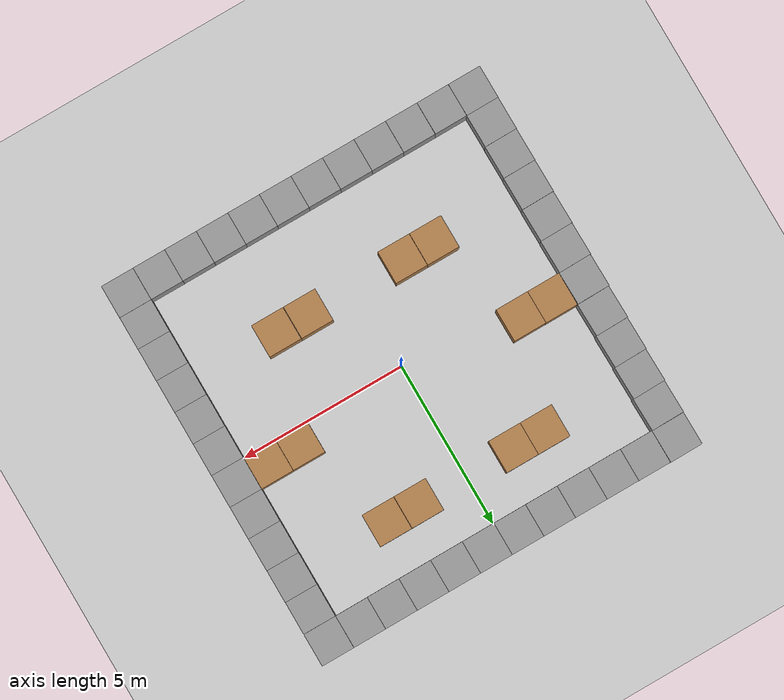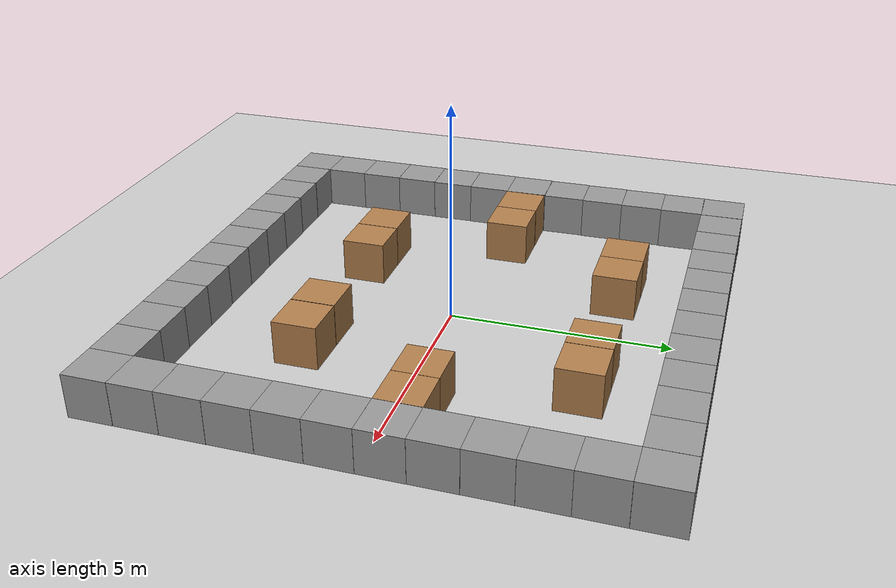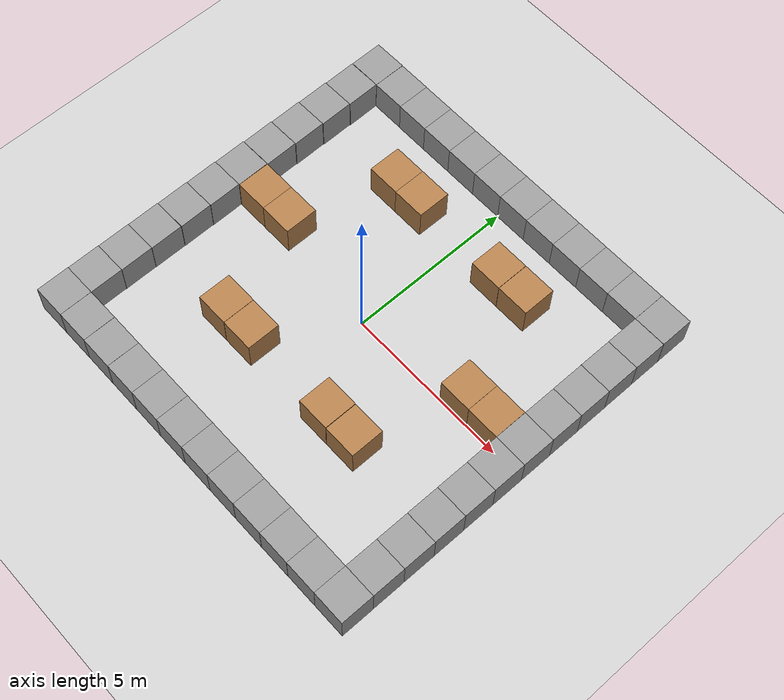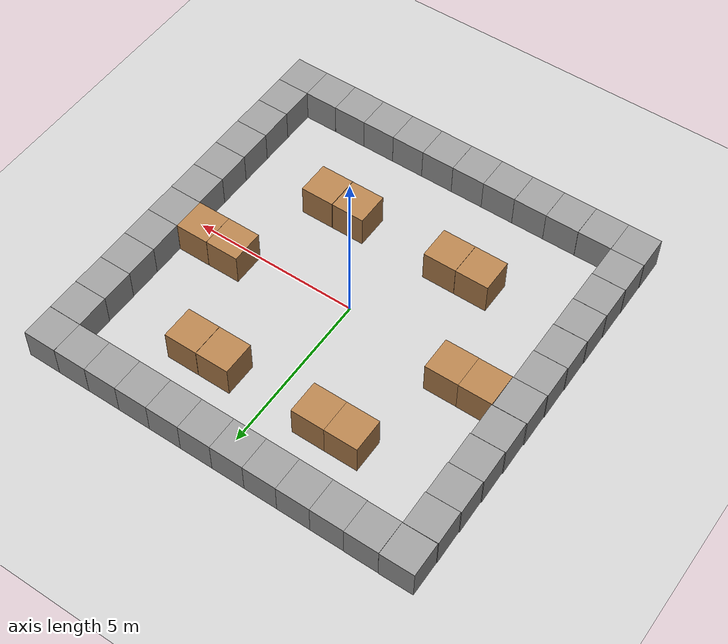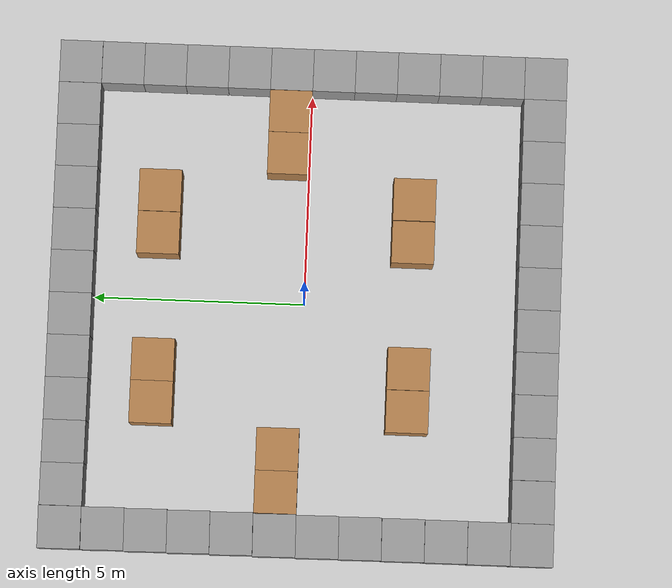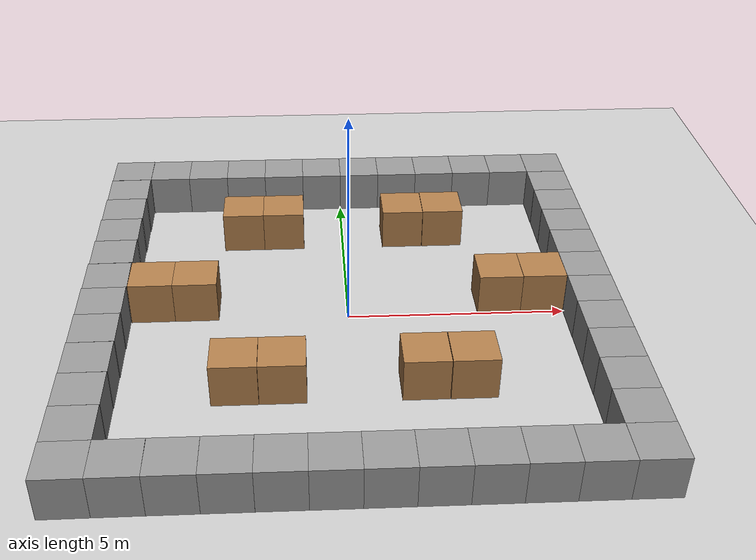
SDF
<sdf version="1.6">
 <world name="default">
  <light name="sun" type="directional">
   <pose>0 0 10 0 -0 0</pose>
   <diffuse>0.8 0.8 0.8 1</diffuse>
   <specular>0.1 0.1 0.1 1</specular>
   <attenuation>
    <range>1000</range>
    <constant>0.9</constant>
    <linear>0.01</linear>
    <quadratic>0.001</quadratic>
   </attenuation>
   <direction>-0.5 0.5 -1</direction>
  </light>
  <model name="ground_plane">
   <static>1</static>
   <link name="link">
    <collision name="collision">
     <geometry><plane><normal>0 0 1</normal><size>100 100</size></plane></geometry>
     <surface><friction><ode><mu>100</mu><mu2>50</mu2></ode></friction></surface>
    </collision>
    <visual name="visual">
     <cast_shadows>0</cast_shadows>
     <geometry><plane><normal>0 0 1</normal><size>100 100</size></plane></geometry>
     <material>
      <script><uri>file://media/materials/scripts/gazebo.material</uri><name>Gazebo/Grey</name></script>
     </material>
    </visual>
   </link>
  </model>
  <gravity>0 0 -9.8</gravity>
  <magnetic_field>6e-06 2.3e-05 -4.2e-05</magnetic_field>
  <atmosphere type="adiabatic"/>
  <physics name="default_physics" default="0" type="ode">
   <max_step_size>0.001</max_step_size>
   <real_time_factor>1</real_time_factor>
   <real_time_update_rate>1000</real_time_update_rate>
  </physics>
  <scene><ambient>0.4 0.4 0.4 1</ambient><background>0.7 0.7 0.7 1</background><shadows>1</shadows></scene>
  <spherical_coordinates>
   <surface_model>EARTH_WGS84</surface_model>
   <latitude_deg>0</latitude_deg>
   <longitude_deg>0</longitude_deg>
   <elevation>0</elevation>
   <heading_deg>0</heading_deg>
  </spherical_coordinates>
  <model name="unit_box_0">
   <pose>-4.49669 0.500481 0.499995 -1e-05 0 0.004034</pose>
   <link name="link">
    <inertial>
     <mass>1</mass>
     <inertia>
      <ixx>0.166667</ixx>
      <ixy>0</ixy>
      <ixz>0</ixz>
      <iyy>0.166667</iyy>
      <iyz>0</iyz>
      <izz>0.166667</izz>
     </inertia>
    </inertial>
    <collision name="collision"><geometry><box><size>1 1 1</size></box></geometry></collision>
    <visual name="visual">
     <geometry><box><size>1 1 1</size></box></geometry>
     <material>
      <script><name>Gazebo/Wood</name><uri>file://media/materials/scripts/gazebo.material</uri></script>
     </material>
    </visual>
   </link>
  </model>
  <model name="unit_box_1">
   <pose>-3.49667 0.500607 0.499995 -1e-05 -0 0.004049</pose>
   <link name="link">
    <inertial>
     <mass>1</mass>
     <inertia>
      <ixx>0.166667</ixx>
      <ixy>0</ixy>
      <ixz>0</ixz>
      <iyy>0.166667</iyy>
      <iyz>0</iyz>
      <izz>0.166667</izz>
     </inertia>
    </inertial>
    <collision name="collision"><geometry><box><size>1 1 1</size></box></geometry></collision>
    <visual name="visual">
     <geometry><box><size>1 1 1</size></box></geometry>
     <material>
      <script><name>Gazebo/Wood</name><uri>file://media/materials/scripts/gazebo.material</uri></script>
     </material>
    </visual>
   </link>
  </model>
  <model name="unit_box_6">
   <pose>3.49689 0.499894 0.499995 0 1e-05 0.000361</pose>
   <link name="link">
    <inertial>
     <mass>1</mass>
     <inertia>
      <ixx>0.166667</ixx>
      <ixy>0</ixy>
      <ixz>0</ixz>
      <iyy>0.166667</iyy>
      <iyz>0</iyz>
      <izz>0.166667</izz>
     </inertia>
    </inertial>
    <collision name="collision"><geometry><box><size>1 1 1</size></box></geometry></collision>
    <visual name="visual">
     <geometry><box><size>1 1 1</size></box></geometry>
     <material>
      <script><name>Gazebo/Wood</name><uri>file://media/materials/scripts/gazebo.material</uri></script>
     </material>
    </visual>
   </link>
  </model>
  <model name="unit_box_7">
   <pose>4.49805 0.501945 0.499995 0 1e-05 0.000101</pose>
   <link name="link">
    <inertial>
     <mass>1</mass>
     <inertia>
      <ixx>0.166667</ixx>
      <ixy>0</ixy>
      <ixz>0</ixz>
      <iyy>0.166667</iyy>
      <iyz>0</iyz>
      <izz>0.166667</izz>
     </inertia>
    </inertial>
    <collision name="collision"><geometry><box><size>1 1 1</size></box></geometry></collision>
    <visual name="visual">
     <geometry><box><size>1 1 1</size></box></geometry>
     <material>
      <script><name>Gazebo/Wood</name><uri>file://media/materials/scripts/gazebo.material</uri></script>
     </material>
    </visual>
   </link>
  </model>
  <model name="unit_box_8">
   <pose>-2.50433 -2.50006 0.499995 1e-05 -0 0.000101</pose>
   <link name="link">
    <inertial>
     <mass>1</mass>
     <inertia>
      <ixx>0.166667</ixx>
      <ixy>0</ixy>
      <ixz>0</ixz>
      <iyy>0.166667</iyy>
      <iyz>0</iyz>
      <izz>0.166667</izz>
     </inertia>
    </inertial>
    <collision name="collision"><geometry><box><size>1 1 1</size></box></geometry></collision>
    <visual name="visual">
     <geometry><box><size>1 1 1</size></box></geometry>
     <material>
      <script><name>Gazebo/Wood</name><uri>file://media/materials/scripts/gazebo.material</uri></script>
     </material>
    </visual>
   </link>
  </model>
  <model name="unit_box_9">
   <pose>-1.49998 -2.5 0.499995 1e-05 -0 0.000107</pose>
   <link name="link">
    <inertial>
     <mass>1</mass>
     <inertia>
      <ixx>0.166667</ixx>
      <ixy>0</ixy>
      <ixz>0</ixz>
      <iyy>0.166667</iyy>
      <iyz>0</iyz>
      <izz>0.166667</izz>
     </inertia>
    </inertial>
    <collision name="collision"><geometry><box><size>1 1 1</size></box></geometry></collision>
    <visual name="visual">
     <geometry><box><size>1 1 1</size></box></geometry>
     <material>
      <script><name>Gazebo/Wood</name><uri>file://media/materials/scripts/gazebo.material</uri></script>
     </material>
    </visual>
   </link>
  </model>
  <model name="unit_box_10">
   <pose>1.48697 -2.5003 0.499995 0 1e-05 0.000579</pose>
   <link name="link">
    <inertial>
     <mass>1</mass>
     <inertia>
      <ixx>0.166667</ixx>
      <ixy>0</ixy>
      <ixz>0</ixz>
      <iyy>0.166667</iyy>
      <iyz>0</iyz>
      <izz>0.166667</izz>
     </inertia>
    </inertial>
    <collision name="collision"><geometry><box><size>1 1 1</size></box></geometry></collision>
    <visual name="visual">
     <geometry><box><size>1 1 1</size></box></geometry>
     <material>
      <script><name>Gazebo/Wood</name><uri>file://media/materials/scripts/gazebo.material</uri></script>
     </material>
    </visual>
   </link>
  </model>
  <model name="unit_box_11">
   <pose>2.5 -2.5 0.499995 1e-05 -0 0.000577</pose>
   <link name="link">
    <inertial>
     <mass>1</mass>
     <inertia>
      <ixx>0.166667</ixx>
      <ixy>0</ixy>
      <ixz>0</ixz>
      <iyy>0.166667</iyy>
      <iyz>0</iyz>
      <izz>0.166667</izz>
     </inertia>
    </inertial>
    <collision name="collision"><geometry><box><size>1 1 1</size></box></geometry></collision>
    <visual name="visual">
     <geometry><box><size>1 1 1</size></box></geometry>
     <material>
      <script><name>Gazebo/Wood</name><uri>file://media/materials/scripts/gazebo.material</uri></script>
     </material>
    </visual>
   </link>
  </model>
  <model name="unit_box_12">
   <pose>-2.5 3.5 0.499995 1e-05 0 1e-06</pose>
   <link name="link">
    <inertial>
     <mass>1</mass>
     <inertia>
      <ixx>0.166667</ixx>
      <ixy>0</ixy>
      <ixz>0</ixz>
      <iyy>0.166667</iyy>
      <iyz>0</iyz>
      <izz>0.166667</izz>
     </inertia>
    </inertial>
    <collision name="collision"><geometry><box><size>1 1 1</size></box></geometry></collision>
    <visual name="visual">
     <geometry><box><size>1 1 1</size></box></geometry>
     <material>
      <script><name>Gazebo/Wood</name><uri>file://media/materials/scripts/gazebo.material</uri></script>
     </material>
    </visual>
   </link>
  </model>
  <model name="unit_box_13">
   <pose>-1.49999 3.5 0.499995 1e-05 -0 1.1e-05</pose>
   <link name="link">
    <inertial>
     <mass>1</mass>
     <inertia>
      <ixx>0.166667</ixx>
      <ixy>0</ixy>
      <ixz>0</ixz>
      <iyy>0.166667</iyy>
      <iyz>0</iyz>
      <izz>0.166667</izz>
     </inertia>
    </inertial>
    <collision name="collision"><geometry><box><size>1 1 1</size></box></geometry></collision>
    <visual name="visual">
     <geometry><box><size>1 1 1</size></box></geometry>
     <material>
      <script><name>Gazebo/Wood</name><uri>file://media/materials/scripts/gazebo.material</uri></script>
     </material>
    </visual>
   </link>
  </model>
  <model name="unit_box_14">
   <pose>1.49419 3.5002 0.499995 1e-05 -0 -0.000432</pose>
   <link name="link">
    <inertial>
     <mass>1</mass>
     <inertia>
      <ixx>0.166667</ixx>
      <ixy>0</ixy>
      <ixz>0</ixz>
      <iyy>0.166667</iyy>
      <iyz>0</iyz>
      <izz>0.166667</izz>
     </inertia>
    </inertial>
    <collision name="collision"><geometry><box><size>1 1 1</size></box></geometry></collision>
    <visual name="visual">
     <geometry><box><size>1 1 1</size></box></geometry>
     <material>
      <script><name>Gazebo/Wood</name><uri>file://media/materials/scripts/gazebo.material</uri></script>
     </material>
    </visual>
   </link>
  </model>
  <model name="unit_box_15">
   <pose>2.5 3.5 0.499995 0 1e-05 -0.000436</pose>
   <link name="link">
    <inertial>
     <mass>1</mass>
     <inertia>
      <ixx>0.166667</ixx>
      <ixy>0</ixy>
      <ixz>0</ixz>
      <iyy>0.166667</iyy>
      <iyz>0</iyz>
      <izz>0.166667</izz>
     </inertia>
    </inertial>
    <collision name="collision"><geometry><box><size>1 1 1</size></box></geometry></collision>
    <visual name="visual">
     <geometry><box><size>1 1 1</size></box></geometry>
     <material>
      <script><name>Gazebo/Wood</name><uri>file://media/materials/scripts/gazebo.material</uri></script>
     </material>
    </visual>
   </link>
  </model>
  <model name="unit_box_2">
   <pose>-5.50286 -5.50983 0.5 0 -0 0.006134</pose>
   <link name="link">
    <inertial>
     <mass>1</mass>
     <inertia>
      <ixx>0.166667</ixx>
      <ixy>0</ixy>
      <ixz>0</ixz>
      <iyy>0.166667</iyy>
      <iyz>0</iyz>
      <izz>0.166667</izz>
     </inertia>
    </inertial>
    <collision name="collision"><geometry><box><size>1 1 1</size></box></geometry></collision>
    <visual name="visual">
     <geometry><box><size>1 1 1</size></box></geometry>
     <material>
      <script><name>Gazebo/Grey</name><uri>file://media/materials/scripts/gazebo.material</uri></script>
     </material>
    </visual>
   </link>
  </model>
  <model name="unit_box_3">
   <pose>-5.50187 -4.50969 0.5 0 -0 0.006357</pose>
   <link name="link">
    <inertial>
     <mass>1</mass>
     <inertia>
      <ixx>0.166667</ixx>
      <ixy>0</ixy>
      <ixz>0</ixz>
      <iyy>0.166667</iyy>
      <iyz>0</iyz>
      <izz>0.166667</izz>
     </inertia>
    </inertial>
    <collision name="collision"><geometry><box><size>1 1 1</size></box></geometry></collision>
    <visual name="visual">
     <geometry><box><size>1 1 1</size></box></geometry>
     <material>
      <script><name>Gazebo/Grey</name><uri>file://media/materials/scripts/gazebo.material</uri></script>
     </material>
    </visual>
   </link>
  </model>
  <model name="unit_box_4">
   <pose>-5.50141 -3.50902 0.499995 0 1e-05 0.007636</pose>
   <link name="link">
    <inertial>
     <mass>1</mass>
     <inertia>
      <ixx>0.166667</ixx>
      <ixy>0</ixy>
      <ixz>0</ixz>
      <iyy>0.166667</iyy>
      <iyz>0</iyz>
      <izz>0.166667</izz>
     </inertia>
    </inertial>
    <collision name="collision"><geometry><box><size>1 1 1</size></box></geometry></collision>
    <visual name="visual">
     <geometry><box><size>1 1 1</size></box></geometry>
     <material>
      <script><name>Gazebo/Grey</name><uri>file://media/materials/scripts/gazebo.material</uri></script>
     </material>
    </visual>
   </link>
  </model>
  <model name="unit_box_5">
   <pose>-5.50197 -2.50779 0.5 0 -0 0.010032</pose>
   <link name="link">
    <inertial>
     <mass>1</mass>
     <inertia>
      <ixx>0.166667</ixx>
      <ixy>0</ixy>
      <ixz>0</ixz>
      <iyy>0.166667</iyy>
      <iyz>0</iyz>
      <izz>0.166667</izz>
     </inertia>
    </inertial>
    <collision name="collision"><geometry><box><size>1 1 1</size></box></geometry></collision>
    <visual name="visual">
     <geometry><box><size>1 1 1</size></box></geometry>
     <material>
      <script><name>Gazebo/Grey</name><uri>file://media/materials/scripts/gazebo.material</uri></script>
     </material>
    </visual>
   </link>
  </model>
  <model name="unit_box_16">
   <pose>-5.50312 -1.50591 0.5 0 -0 0.013697</pose>
   <link name="link">
    <inertial>
     <mass>1</mass>
     <inertia>
      <ixx>0.166667</ixx>
      <ixy>0</ixy>
      <ixz>0</ixz>
      <iyy>0.166667</iyy>
      <iyz>0</iyz>
      <izz>0.166667</izz>
     </inertia>
    </inertial>
    <collision name="collision"><geometry><box><size>1 1 1</size></box></geometry></collision>
    <visual name="visual">
     <geometry><box><size>1 1 1</size></box></geometry>
     <material>
      <script><name>Gazebo/Grey</name><uri>file://media/materials/scripts/gazebo.material</uri></script>
     </material>
    </visual>
   </link>
  </model>
  <model name="unit_box_17">
   <pose>-5.50624 -0.505473 0.499995 1e-05 -0 0.014479</pose>
   <link name="link">
    <inertial>
     <mass>1</mass>
     <inertia>
      <ixx>0.166667</ixx>
      <ixy>0</ixy>
      <ixz>0</ixz>
      <iyy>0.166667</iyy>
      <iyz>0</iyz>
      <izz>0.166667</izz>
     </inertia>
    </inertial>
    <collision name="collision"><geometry><box><size>1 1 1</size></box></geometry></collision>
    <visual name="visual">
     <geometry><box><size>1 1 1</size></box></geometry>
     <material>
      <script><name>Gazebo/Grey</name><uri>file://media/materials/scripts/gazebo.material</uri></script>
     </material>
    </visual>
   </link>
  </model>
  <model name="unit_box_18">
   <pose>-5.50598 0.494806 0.5 0 -0 0.014771</pose>
   <link name="link">
    <inertial>
     <mass>1</mass>
     <inertia>
      <ixx>0.166667</ixx>
      <ixy>0</ixy>
      <ixz>0</ixz>
      <iyy>0.166667</iyy>
      <iyz>0</iyz>
      <izz>0.166667</izz>
     </inertia>
    </inertial>
    <collision name="collision"><geometry><box><size>1 1 1</size></box></geometry></collision>
    <visual name="visual">
     <geometry><box><size>1 1 1</size></box></geometry>
     <material>
      <script><name>Gazebo/Grey</name><uri>file://media/materials/scripts/gazebo.material</uri></script>
     </material>
    </visual>
   </link>
  </model>
  <model name="unit_box_19">
   <pose>-5.49999 1.49864 0.5 0 -0 0.019366</pose>
   <link name="link">
    <inertial>
     <mass>1</mass>
     <inertia>
      <ixx>0.166667</ixx>
      <ixy>0</ixy>
      <ixz>0</ixz>
      <iyy>0.166667</iyy>
      <iyz>0</iyz>
      <izz>0.166667</izz>
     </inertia>
    </inertial>
    <collision name="collision"><geometry><box><size>1 1 1</size></box></geometry></collision>
    <visual name="visual">
     <geometry><box><size>1 1 1</size></box></geometry>
     <material>
      <script><name>Gazebo/Grey</name><uri>file://media/materials/scripts/gazebo.material</uri></script>
     </material>
    </visual>
   </link>
  </model>
  <model name="unit_box_20">
   <pose>-5.49991 2.49958 0.499995 -1e-05 0 0.01883</pose>
   <link name="link">
    <inertial>
     <mass>1</mass>
     <inertia>
      <ixx>0.166667</ixx>
      <ixy>0</ixy>
      <ixz>0</ixz>
      <iyy>0.166667</iyy>
      <iyz>0</iyz>
      <izz>0.166667</izz>
     </inertia>
    </inertial>
    <collision name="collision"><geometry><box><size>1 1 1</size></box></geometry></collision>
    <visual name="visual">
     <geometry><box><size>1 1 1</size></box></geometry>
     <material>
      <script><name>Gazebo/Grey</name><uri>file://media/materials/scripts/gazebo.material</uri></script>
     </material>
    </visual>
   </link>
  </model>
  <model name="unit_box_21">
   <pose>-5.49998 3.49986 0.499995 -0 -1e-05 0.018613</pose>
   <link name="link">
    <inertial>
     <mass>1</mass>
     <inertia>
      <ixx>0.166667</ixx>
      <ixy>0</ixy>
      <ixz>0</ixz>
      <iyy>0.166667</iyy>
      <iyz>0</iyz>
      <izz>0.166667</izz>
     </inertia>
    </inertial>
    <collision name="collision"><geometry><box><size>1 1 1</size></box></geometry></collision>
    <visual name="visual">
     <geometry><box><size>1 1 1</size></box></geometry>
     <material>
      <script><name>Gazebo/Grey</name><uri>file://media/materials/scripts/gazebo.material</uri></script>
     </material>
    </visual>
   </link>
  </model>
  <model name="unit_box_22">
   <pose>-5.49999 4.50008 0.5 0 -0 0.01855</pose>
   <link name="link">
    <inertial>
     <mass>1</mass>
     <inertia>
      <ixx>0.166667</ixx>
      <ixy>0</ixy>
      <ixz>0</ixz>
      <iyy>0.166667</iyy>
      <iyz>0</iyz>
      <izz>0.166667</izz>
     </inertia>
    </inertial>
    <collision name="collision"><geometry><box><size>1 1 1</size></box></geometry></collision>
    <visual name="visual">
     <geometry><box><size>1 1 1</size></box></geometry>
     <material>
      <script><name>Gazebo/Grey</name><uri>file://media/materials/scripts/gazebo.material</uri></script>
     </material>
    </visual>
   </link>
  </model>
  <model name="unit_box_23">
   <pose>-5.50324 5.50513 0.5 0 -0 0.00841</pose>
   <link name="link">
    <inertial>
     <mass>1</mass>
     <inertia>
      <ixx>0.166667</ixx>
      <ixy>0</ixy>
      <ixz>0</ixz>
      <iyy>0.166667</iyy>
      <iyz>0</iyz>
      <izz>0.166667</izz>
     </inertia>
    </inertial>
    <collision name="collision"><geometry><box><size>1 1 1</size></box></geometry></collision>
    <visual name="visual">
     <geometry><box><size>1 1 1</size></box></geometry>
     <material>
      <script><name>Gazebo/Grey</name><uri>file://media/materials/scripts/gazebo.material</uri></script>
     </material>
    </visual>
   </link>
  </model>
  <model name="unit_box_24">
   <pose>-4.50227 -5.50434 0.5 0 -0 0.004942</pose>
   <link name="link">
    <inertial>
     <mass>1</mass>
     <inertia>
      <ixx>0.166667</ixx>
      <ixy>0</ixy>
      <ixz>0</ixz>
      <iyy>0.166667</iyy>
      <iyz>0</iyz>
      <izz>0.166667</izz>
     </inertia>
    </inertial>
    <collision name="collision"><geometry><box><size>1 1 1</size></box></geometry></collision>
    <visual name="visual">
     <geometry><box><size>1 1 1</size></box></geometry>
     <material>
      <script><name>Gazebo/Grey</name><uri>file://media/materials/scripts/gazebo.material</uri></script>
     </material>
    </visual>
   </link>
  </model>
  <model name="unit_box_25">
   <pose>-3.4999 -5.50187 0.499995 0 1e-05 0.000206</pose>
   <link name="link">
    <inertial>
     <mass>1</mass>
     <inertia>
      <ixx>0.166667</ixx>
      <ixy>0</ixy>
      <ixz>0</ixz>
      <iyy>0.166667</iyy>
      <iyz>0</iyz>
      <izz>0.166667</izz>
     </inertia>
    </inertial>
    <collision name="collision"><geometry><box><size>1 1 1</size></box></geometry></collision>
    <visual name="visual">
     <geometry><box><size>1 1 1</size></box></geometry>
     <material>
      <script><name>Gazebo/Grey</name><uri>file://media/materials/scripts/gazebo.material</uri></script>
     </material>
    </visual>
   </link>
  </model>
  <model name="unit_box_26">
   <pose>-2.49948 -5.50131 0.5 0 0 -0.000637</pose>
   <link name="link">
    <inertial>
     <mass>1</mass>
     <inertia>
      <ixx>0.166667</ixx>
      <ixy>0</ixy>
      <ixz>0</ixz>
      <iyy>0.166667</iyy>
      <iyz>0</iyz>
      <izz>0.166667</izz>
     </inertia>
    </inertial>
    <collision name="collision"><geometry><box><size>1 1 1</size></box></geometry></collision>
    <visual name="visual">
     <geometry><box><size>1 1 1</size></box></geometry>
     <material>
      <script><name>Gazebo/Grey</name><uri>file://media/materials/scripts/gazebo.material</uri></script>
     </material>
    </visual>
   </link>
  </model>
  <model name="unit_box_27">
   <pose>-1.49913 -5.5003 0.5 0 0 -0.001327</pose>
   <link name="link">
    <inertial>
     <mass>1</mass>
     <inertia>
      <ixx>0.166667</ixx>
      <ixy>0</ixy>
      <ixz>0</ixz>
      <iyy>0.166667</iyy>
      <iyz>0</iyz>
      <izz>0.166667</izz>
     </inertia>
    </inertial>
    <collision name="collision"><geometry><box><size>1 1 1</size></box></geometry></collision>
    <visual name="visual">
     <geometry><box><size>1 1 1</size></box></geometry>
     <material>
      <script><name>Gazebo/Grey</name><uri>file://media/materials/scripts/gazebo.material</uri></script>
     </material>
    </visual>
   </link>
  </model>
  <model name="unit_box_28">
   <pose>-0.499033 -5.50195 0.499995 0 1e-05 -0.001494</pose>
   <link name="link">
    <inertial>
     <mass>1</mass>
     <inertia>
      <ixx>0.166667</ixx>
      <ixy>0</ixy>
      <ixz>0</ixz>
      <iyy>0.166667</iyy>
      <iyz>0</iyz>
      <izz>0.166667</izz>
     </inertia>
    </inertial>
    <collision name="collision"><geometry><box><size>1 1 1</size></box></geometry></collision>
    <visual name="visual">
     <geometry><box><size>1 1 1</size></box></geometry>
     <material>
      <script><name>Gazebo/Grey</name><uri>file://media/materials/scripts/gazebo.material</uri></script>
     </material>
    </visual>
   </link>
  </model>
  <model name="unit_box_29">
   <pose>0.501062 -5.50128 0.5 0 0 -0.001679</pose>
   <link name="link">
    <inertial>
     <mass>1</mass>
     <inertia>
      <ixx>0.166667</ixx>
      <ixy>0</ixy>
      <ixz>0</ixz>
      <iyy>0.166667</iyy>
      <iyz>0</iyz>
      <izz>0.166667</izz>
     </inertia>
    </inertial>
    <collision name="collision"><geometry><box><size>1 1 1</size></box></geometry></collision>
    <visual name="visual">
     <geometry><box><size>1 1 1</size></box></geometry>
     <material>
      <script><name>Gazebo/Grey</name><uri>file://media/materials/scripts/gazebo.material</uri></script>
     </material>
    </visual>
   </link>
  </model>
  <model name="unit_box_30">
   <pose>1.50107 -5.50117 0.499995 -1e-05 -0 -0.001683</pose>
   <link name="link">
    <inertial>
     <mass>1</mass>
     <inertia>
      <ixx>0.166667</ixx>
      <ixy>0</ixy>
      <ixz>0</ixz>
      <iyy>0.166667</iyy>
      <iyz>0</iyz>
      <izz>0.166667</izz>
     </inertia>
    </inertial>
    <collision name="collision"><geometry><box><size>1 1 1</size></box></geometry></collision>
    <visual name="visual">
     <geometry><box><size>1 1 1</size></box></geometry>
     <material>
      <script><name>Gazebo/Grey</name><uri>file://media/materials/scripts/gazebo.material</uri></script>
     </material>
    </visual>
   </link>
  </model>
  <model name="unit_box_31">
   <pose>2.50116 -5.50164 0.499995 -1e-05 -0 -0.001874</pose>
   <link name="link">
    <inertial>
     <mass>1</mass>
     <inertia>
      <ixx>0.166667</ixx>
      <ixy>0</ixy>
      <ixz>0</ixz>
      <iyy>0.166667</iyy>
      <iyz>0</iyz>
      <izz>0.166667</izz>
     </inertia>
    </inertial>
    <collision name="collision"><geometry><box><size>1 1 1</size></box></geometry></collision>
    <visual name="visual">
     <geometry><box><size>1 1 1</size></box></geometry>
     <material>
      <script><name>Gazebo/Grey</name><uri>file://media/materials/scripts/gazebo.material</uri></script>
     </material>
    </visual>
   </link>
  </model>
  <model name="unit_box_32">
   <pose>3.50117 -5.50124 0.5 0 0 -0.001874</pose>
   <link name="link">
    <inertial>
     <mass>1</mass>
     <inertia>
      <ixx>0.166667</ixx>
      <ixy>0</ixy>
      <ixz>0</ixz>
      <iyy>0.166667</iyy>
      <iyz>0</iyz>
      <izz>0.166667</izz>
     </inertia>
    </inertial>
    <collision name="collision"><geometry><box><size>1 1 1</size></box></geometry></collision>
    <visual name="visual">
     <geometry><box><size>1 1 1</size></box></geometry>
     <material>
      <script><name>Gazebo/Grey</name><uri>file://media/materials/scripts/gazebo.material</uri></script>
     </material>
    </visual>
   </link>
  </model>
  <model name="unit_box_33">
   <pose>4.50121 -5.50073 0.5 0 0 -0.001953</pose>
   <link name="link">
    <inertial>
     <mass>1</mass>
     <inertia>
      <ixx>0.166667</ixx>
      <ixy>0</ixy>
      <ixz>0</ixz>
      <iyy>0.166667</iyy>
      <iyz>0</iyz>
      <izz>0.166667</izz>
     </inertia>
    </inertial>
    <collision name="collision"><geometry><box><size>1 1 1</size></box></geometry></collision>
    <visual name="visual">
     <geometry><box><size>1 1 1</size></box></geometry>
     <material>
      <script><name>Gazebo/Grey</name><uri>file://media/materials/scripts/gazebo.material</uri></script>
     </material>
    </visual>
   </link>
  </model>
  <model name="unit_box_34">
   <pose>5.50138 -5.50063 0.499995 -1e-05 -0 -0.002266</pose>
   <link name="link">
    <inertial>
     <mass>1</mass>
     <inertia>
      <ixx>0.166667</ixx>
      <ixy>0</ixy>
      <ixz>0</ixz>
      <iyy>0.166667</iyy>
      <iyz>0</iyz>
      <izz>0.166667</izz>
     </inertia>
    </inertial>
    <collision name="collision"><geometry><box><size>1 1 1</size></box></geometry></collision>
    <visual name="visual">
     <geometry><box><size>1 1 1</size></box></geometry>
     <material>
      <script><name>Gazebo/Grey</name><uri>file://media/materials/scripts/gazebo.material</uri></script>
     </material>
    </visual>
   </link>
  </model>
  <model name="unit_box_35">
   <pose>5.50014 -4.50029 0.499995 -1e-05 -0 -0.002908</pose>
   <link name="link">
    <inertial>
     <mass>1</mass>
     <inertia>
      <ixx>0.166667</ixx>
      <ixy>0</ixy>
      <ixz>0</ixz>
      <iyy>0.166667</iyy>
      <iyz>0</iyz>
      <izz>0.166667</izz>
     </inertia>
    </inertial>
    <collision name="collision"><geometry><box><size>1 1 1</size></box></geometry></collision>
    <visual name="visual">
     <geometry><box><size>1 1 1</size></box></geometry>
     <material>
      <script><name>Gazebo/Grey</name><uri>file://media/materials/scripts/gazebo.material</uri></script>
     </material>
    </visual>
   </link>
  </model>
  <model name="unit_box_36">
   <pose>5.50032 -3.50026 0.5 0 0 -0.002958</pose>
   <link name="link">
    <inertial>
     <mass>1</mass>
     <inertia>
      <ixx>0.166667</ixx>
      <ixy>0</ixy>
      <ixz>0</ixz>
      <iyy>0.166667</iyy>
      <iyz>0</iyz>
      <izz>0.166667</izz>
     </inertia>
    </inertial>
    <collision name="collision"><geometry><box><size>1 1 1</size></box></geometry></collision>
    <visual name="visual">
     <geometry><box><size>1 1 1</size></box></geometry>
     <material>
      <script><name>Gazebo/Grey</name><uri>file://media/materials/scripts/gazebo.material</uri></script>
     </material>
    </visual>
   </link>
  </model>
  <model name="unit_box_37">
   <pose>5.50022 -2.50016 0.5 0 0 -0.003151</pose>
   <link name="link">
    <inertial>
     <mass>1</mass>
     <inertia>
      <ixx>0.166667</ixx>
      <ixy>0</ixy>
      <ixz>0</ixz>
      <iyy>0.166667</iyy>
      <iyz>0</iyz>
      <izz>0.166667</izz>
     </inertia>
    </inertial>
    <collision name="collision"><geometry><box><size>1 1 1</size></box></geometry></collision>
    <visual name="visual">
     <geometry><box><size>1 1 1</size></box></geometry>
     <material>
      <script><name>Gazebo/Grey</name><uri>file://media/materials/scripts/gazebo.material</uri></script>
     </material>
    </visual>
   </link>
  </model>
  <model name="unit_box_38">
   <pose>5.50039 -1.50012 0.5 0 0 -0.003222</pose>
   <link name="link">
    <inertial>
     <mass>1</mass>
     <inertia>
      <ixx>0.166667</ixx>
      <ixy>0</ixy>
      <ixz>0</ixz>
      <iyy>0.166667</iyy>
      <iyz>0</iyz>
      <izz>0.166667</izz>
     </inertia>
    </inertial>
    <collision name="collision"><geometry><box><size>1 1 1</size></box></geometry></collision>
    <visual name="visual">
     <geometry><box><size>1 1 1</size></box></geometry>
     <material>
      <script><name>Gazebo/Grey</name><uri>file://media/materials/scripts/gazebo.material</uri></script>
     </material>
    </visual>
   </link>
  </model>
  <model name="unit_box_39">
   <pose>5.50054 -0.500104 0.5 0 0 -0.003234</pose>
   <link name="link">
    <inertial>
     <mass>1</mass>
     <inertia>
      <ixx>0.166667</ixx>
      <ixy>0</ixy>
      <ixz>0</ixz>
      <iyy>0.166667</iyy>
      <iyz>0</iyz>
      <izz>0.166667</izz>
     </inertia>
    </inertial>
    <collision name="collision"><geometry><box><size>1 1 1</size></box></geometry></collision>
    <visual name="visual">
     <geometry><box><size>1 1 1</size></box></geometry>
     <material>
      <script><name>Gazebo/Grey</name><uri>file://media/materials/scripts/gazebo.material</uri></script>
     </material>
    </visual>
   </link>
  </model>
  <model name="unit_box_40">
   <pose>5.50051 0.500058 0.5 0 0 -0.003468</pose>
   <link name="link">
    <inertial>
     <mass>1</mass>
     <inertia>
      <ixx>0.166667</ixx>
      <ixy>0</ixy>
      <ixz>0</ixz>
      <iyy>0.166667</iyy>
      <iyz>0</iyz>
      <izz>0.166667</izz>
     </inertia>
    </inertial>
    <collision name="collision"><geometry><box><size>1 1 1</size></box></geometry></collision>
    <visual name="visual">
     <geometry><box><size>1 1 1</size></box></geometry>
     <material>
      <script><name>Gazebo/Grey</name><uri>file://media/materials/scripts/gazebo.material</uri></script>
     </material>
    </visual>
   </link>
  </model>
  <model name="unit_box_41">
   <pose>5.50073 1.50009 0.499995 0 1e-05 -0.003432</pose>
   <link name="link">
    <inertial>
     <mass>1</mass>
     <inertia>
      <ixx>0.166667</ixx>
      <ixy>0</ixy>
      <ixz>0</ixz>
      <iyy>0.166667</iyy>
      <iyz>0</iyz>
      <izz>0.166667</izz>
     </inertia>
    </inertial>
    <collision name="collision"><geometry><box><size>1 1 1</size></box></geometry></collision>
    <visual name="visual">
     <geometry><box><size>1 1 1</size></box></geometry>
     <material>
      <script><name>Gazebo/Grey</name><uri>file://media/materials/scripts/gazebo.material</uri></script>
     </material>
    </visual>
   </link>
  </model>
  <model name="unit_box_42">
   <pose>5.50086 2.5001 0.5 0 0 -0.003419</pose>
   <link name="link">
    <inertial>
     <mass>1</mass>
     <inertia>
      <ixx>0.166667</ixx>
      <ixy>0</ixy>
      <ixz>0</ixz>
      <iyy>0.166667</iyy>
      <iyz>0</iyz>
      <izz>0.166667</izz>
     </inertia>
    </inertial>
    <collision name="collision"><geometry><box><size>1 1 1</size></box></geometry></collision>
    <visual name="visual">
     <geometry><box><size>1 1 1</size></box></geometry>
     <material>
      <script><name>Gazebo/Grey</name><uri>file://media/materials/scripts/gazebo.material</uri></script>
     </material>
    </visual>
   </link>
  </model>
  <model name="unit_box_43">
   <pose>5.50031 3.5002 0.5 0 0 -0.003244</pose>
   <link name="link">
    <inertial>
     <mass>1</mass>
     <inertia>
      <ixx>0.166667</ixx>
      <ixy>0</ixy>
      <ixz>0</ixz>
      <iyy>0.166667</iyy>
      <iyz>0</iyz>
      <izz>0.166667</izz>
     </inertia>
    </inertial>
    <collision name="collision"><geometry><box><size>1 1 1</size></box></geometry></collision>
    <visual name="visual">
     <geometry><box><size>1 1 1</size></box></geometry>
     <material>
      <script><name>Gazebo/Grey</name><uri>file://media/materials/scripts/gazebo.material</uri></script>
     </material>
    </visual>
   </link>
  </model>
  <model name="unit_box_44">
   <pose>5.50017 4.5003 0.5 0 0 -0.003059</pose>
   <link name="link">
    <inertial>
     <mass>1</mass>
     <inertia>
      <ixx>0.166667</ixx>
      <ixy>0</ixy>
      <ixz>0</ixz>
      <iyy>0.166667</iyy>
      <iyz>0</iyz>
      <izz>0.166667</izz>
     </inertia>
    </inertial>
    <collision name="collision"><geometry><box><size>1 1 1</size></box></geometry></collision>
    <visual name="visual">
     <geometry><box><size>1 1 1</size></box></geometry>
     <material>
      <script><name>Gazebo/Grey</name><uri>file://media/materials/scripts/gazebo.material</uri></script>
     </material>
    </visual>
   </link>
  </model>
  <model name="unit_box_45">
   <pose>5.5011 5.50173 0.5 0 0 -0.000191</pose>
   <link name="link">
    <inertial>
     <mass>1</mass>
     <inertia>
      <ixx>0.166667</ixx>
      <ixy>0</ixy>
      <ixz>0</ixz>
      <iyy>0.166667</iyy>
      <iyz>0</iyz>
      <izz>0.166667</izz>
     </inertia>
    </inertial>
    <collision name="collision"><geometry><box><size>1 1 1</size></box></geometry></collision>
    <visual name="visual">
     <geometry><box><size>1 1 1</size></box></geometry>
     <material>
      <script><name>Gazebo/Grey</name><uri>file://media/materials/scripts/gazebo.material</uri></script>
     </material>
    </visual>
   </link>
  </model>
  <model name="unit_box_46">
   <pose>4.50013 5.50132 0.499995 -0 1e-05 0.001744</pose>
   <link name="link">
    <inertial>
     <mass>1</mass>
     <inertia>
      <ixx>0.166667</ixx>
      <ixy>0</ixy>
      <ixz>0</ixz>
      <iyy>0.166667</iyy>
      <iyz>0</iyz>
      <izz>0.166667</izz>
     </inertia>
    </inertial>
    <collision name="collision"><geometry><box><size>1 1 1</size></box></geometry></collision>
    <visual name="visual">
     <geometry><box><size>1 1 1</size></box></geometry>
     <material>
      <script><name>Gazebo/Grey</name><uri>file://media/materials/scripts/gazebo.material</uri></script>
     </material>
    </visual>
   </link>
  </model>
  <model name="unit_box_47">
   <pose>3.50013 5.49842 0.499995 0 1e-05 0.001753</pose>
   <link name="link">
    <inertial>
     <mass>1</mass>
     <inertia>
      <ixx>0.166667</ixx>
      <ixy>0</ixy>
      <ixz>0</ixz>
      <iyy>0.166667</iyy>
      <iyz>0</iyz>
      <izz>0.166667</izz>
     </inertia>
    </inertial>
    <collision name="collision"><geometry><box><size>1 1 1</size></box></geometry></collision>
    <visual name="visual">
     <geometry><box><size>1 1 1</size></box></geometry>
     <material>
      <script><name>Gazebo/Grey</name><uri>file://media/materials/scripts/gazebo.material</uri></script>
     </material>
    </visual>
   </link>
  </model>
  <model name="unit_box_48">
   <pose>2.50012 5.49866 0.5 0 -0 0.001757</pose>
   <link name="link">
    <inertial>
     <mass>1</mass>
     <inertia>
      <ixx>0.166667</ixx>
      <ixy>0</ixy>
      <ixz>0</ixz>
      <iyy>0.166667</iyy>
      <iyz>0</iyz>
      <izz>0.166667</izz>
     </inertia>
    </inertial>
    <collision name="collision"><geometry><box><size>1 1 1</size></box></geometry></collision>
    <visual name="visual">
     <geometry><box><size>1 1 1</size></box></geometry>
     <material>
      <script><name>Gazebo/Grey</name><uri>file://media/materials/scripts/gazebo.material</uri></script>
     </material>
    </visual>
   </link>
  </model>
  <model name="unit_box_49">
   <pose>1.50011 5.49822 0.5 0 -0 0.001768</pose>
   <link name="link">
    <inertial>
     <mass>1</mass>
     <inertia>
      <ixx>0.166667</ixx>
      <ixy>0</ixy>
      <ixz>0</ixz>
      <iyy>0.166667</iyy>
      <iyz>0</iyz>
      <izz>0.166667</izz>
     </inertia>
    </inertial>
    <collision name="collision"><geometry><box><size>1 1 1</size></box></geometry></collision>
    <visual name="visual">
     <geometry><box><size>1 1 1</size></box></geometry>
     <material>
      <script><name>Gazebo/Grey</name><uri>file://media/materials/scripts/gazebo.material</uri></script>
     </material>
    </visual>
   </link>
  </model>
  <model name="unit_box_50">
   <pose>0.5001 5.49846 0.5 0 -0 0.001772</pose>
   <link name="link">
    <inertial>
     <mass>1</mass>
     <inertia>
      <ixx>0.166667</ixx>
      <ixy>0</ixy>
      <ixz>0</ixz>
      <iyy>0.166667</iyy>
      <iyz>0</iyz>
      <izz>0.166667</izz>
     </inertia>
    </inertial>
    <collision name="collision"><geometry><box><size>1 1 1</size></box></geometry></collision>
    <visual name="visual">
     <geometry><box><size>1 1 1</size></box></geometry>
     <material>
      <script><name>Gazebo/Grey</name><uri>file://media/materials/scripts/gazebo.material</uri></script>
     </material>
    </visual>
   </link>
  </model>
  <model name="unit_box_51">
   <pose>-0.499903 5.49789 0.5 0 -0 0.001772</pose>
   <link name="link">
    <inertial>
     <mass>1</mass>
     <inertia>
      <ixx>0.166667</ixx>
      <ixy>0</ixy>
      <ixz>0</ixz>
      <iyy>0.166667</iyy>
      <iyz>0</iyz>
      <izz>0.166667</izz>
     </inertia>
    </inertial>
    <collision name="collision"><geometry><box><size>1 1 1</size></box></geometry></collision>
    <visual name="visual">
     <geometry><box><size>1 1 1</size></box></geometry>
     <material>
      <script><name>Gazebo/Grey</name><uri>file://media/materials/scripts/gazebo.material</uri></script>
     </material>
    </visual>
   </link>
  </model>
  <model name="unit_box_52">
   <pose>-1.49991 5.49733 0.499995 0 1e-05 0.00178</pose>
   <link name="link">
    <inertial>
     <mass>1</mass>
     <inertia>
      <ixx>0.166667</ixx>
      <ixy>0</ixy>
      <ixz>0</ixz>
      <iyy>0.166667</iyy>
      <iyz>0</iyz>
      <izz>0.166667</izz>
     </inertia>
    </inertial>
    <collision name="collision"><geometry><box><size>1 1 1</size></box></geometry></collision>
    <visual name="visual">
     <geometry><box><size>1 1 1</size></box></geometry>
     <material>
      <script><name>Gazebo/Grey</name><uri>file://media/materials/scripts/gazebo.material</uri></script>
     </material>
    </visual>
   </link>
  </model>
  <model name="unit_box_53">
   <pose>-2.49992 5.49751 0.5 0 -0 0.001795</pose>
   <link name="link">
    <inertial>
     <mass>1</mass>
     <inertia>
      <ixx>0.166667</ixx>
      <ixy>0</ixy>
      <ixz>0</ixz>
      <iyy>0.166667</iyy>
      <iyz>0</iyz>
      <izz>0.166667</izz>
     </inertia>
    </inertial>
    <collision name="collision"><geometry><box><size>1 1 1</size></box></geometry></collision>
    <visual name="visual">
     <geometry><box><size>1 1 1</size></box></geometry>
     <material>
      <script><name>Gazebo/Grey</name><uri>file://media/materials/scripts/gazebo.material</uri></script>
     </material>
    </visual>
   </link>
  </model>
  <model name="unit_box_54">
   <pose>-3.49993 5.49826 0.499995 0 1e-05 0.001805</pose>
   <link name="link">
    <inertial>
     <mass>1</mass>
     <inertia>
      <ixx>0.166667</ixx>
      <ixy>0</ixy>
      <ixz>0</ixz>
      <iyy>0.166667</iyy>
      <iyz>0</iyz>
      <izz>0.166667</izz>
     </inertia>
    </inertial>
    <collision name="collision"><geometry><box><size>1 1 1</size></box></geometry></collision>
    <visual name="visual">
     <geometry><box><size>1 1 1</size></box></geometry>
     <material>
      <script><name>Gazebo/Grey</name><uri>file://media/materials/scripts/gazebo.material</uri></script>
     </material>
    </visual>
   </link>
  </model>
  <model name="unit_box_55">
   <pose>-4.49994 5.50244 0.499995 -1e-05 -0 0.001805</pose>
   <link name="link">
    <inertial>
     <mass>1</mass>
     <inertia>
      <ixx>0.166667</ixx>
      <ixy>0</ixy>
      <ixz>0</ixz>
      <iyy>0.166667</iyy>
      <iyz>0</iyz>
      <izz>0.166667</izz>
     </inertia>
    </inertial>
    <collision name="collision"><geometry><box><size>1 1 1</size></box></geometry></collision>
    <visual name="visual">
     <geometry><box><size>1 1 1</size></box></geometry>
     <material>
      <script><name>Gazebo/Grey</name><uri>file://media/materials/scripts/gazebo.material</uri></script>
     </material>
    </visual>
   </link>
  </model>
 </world>
</sdf>
